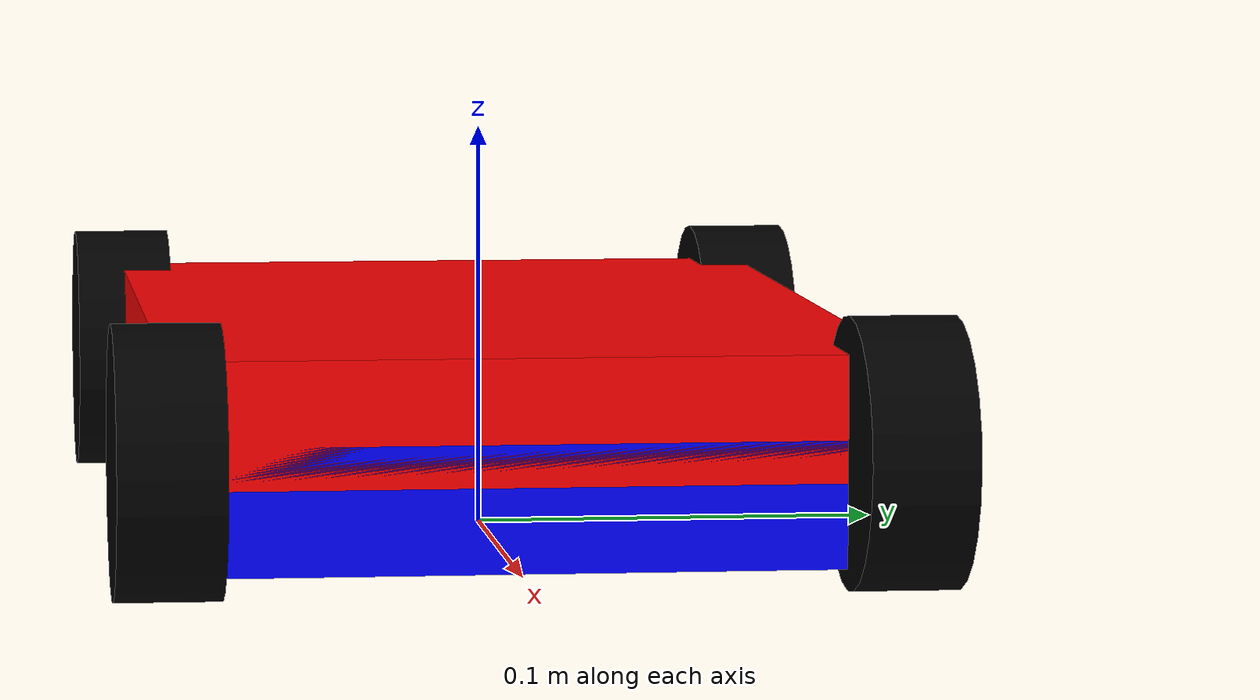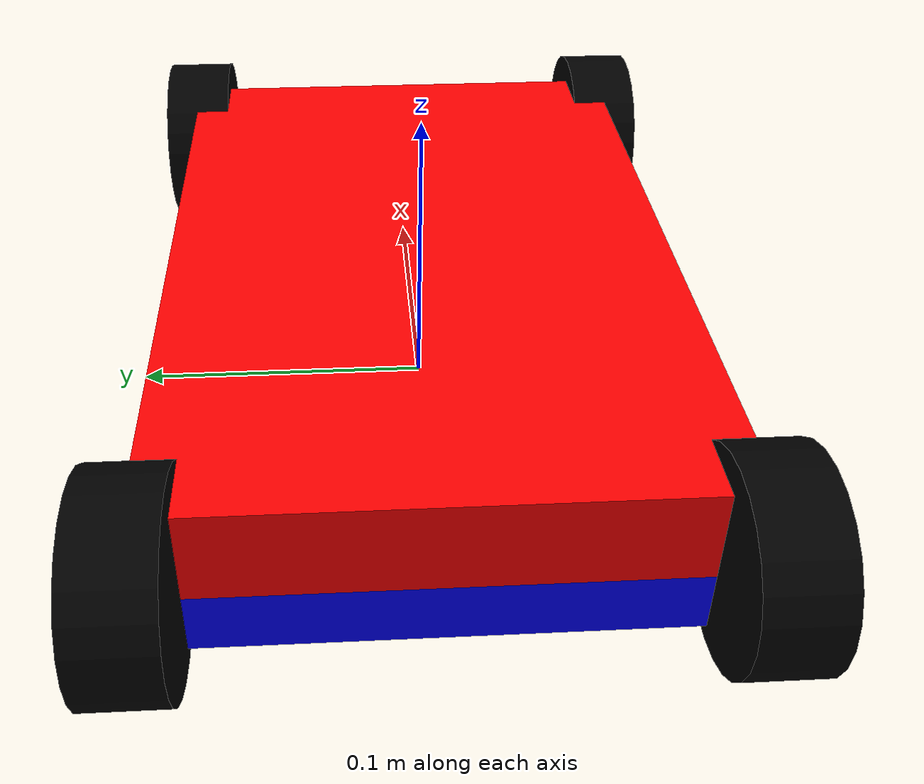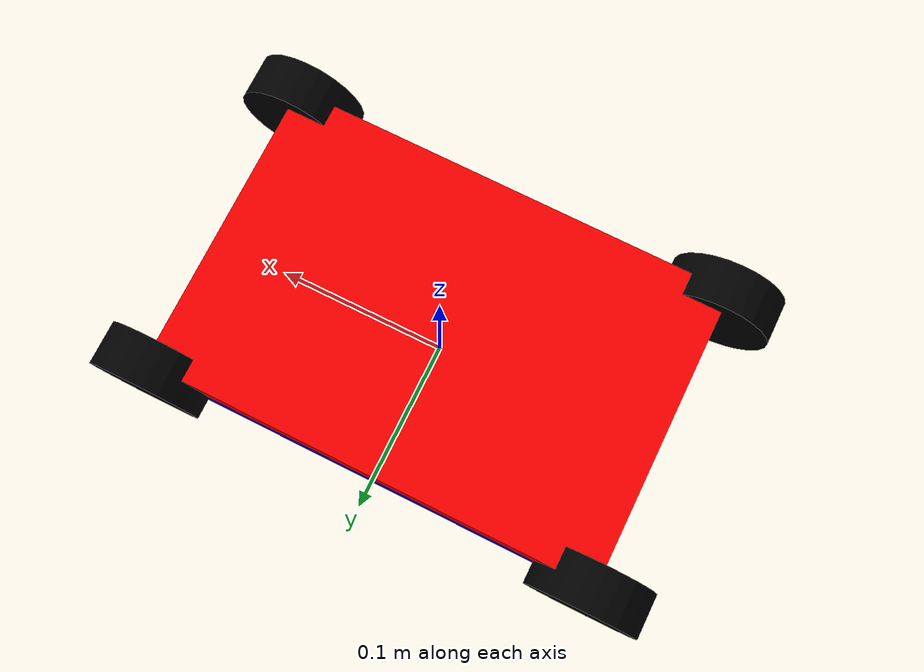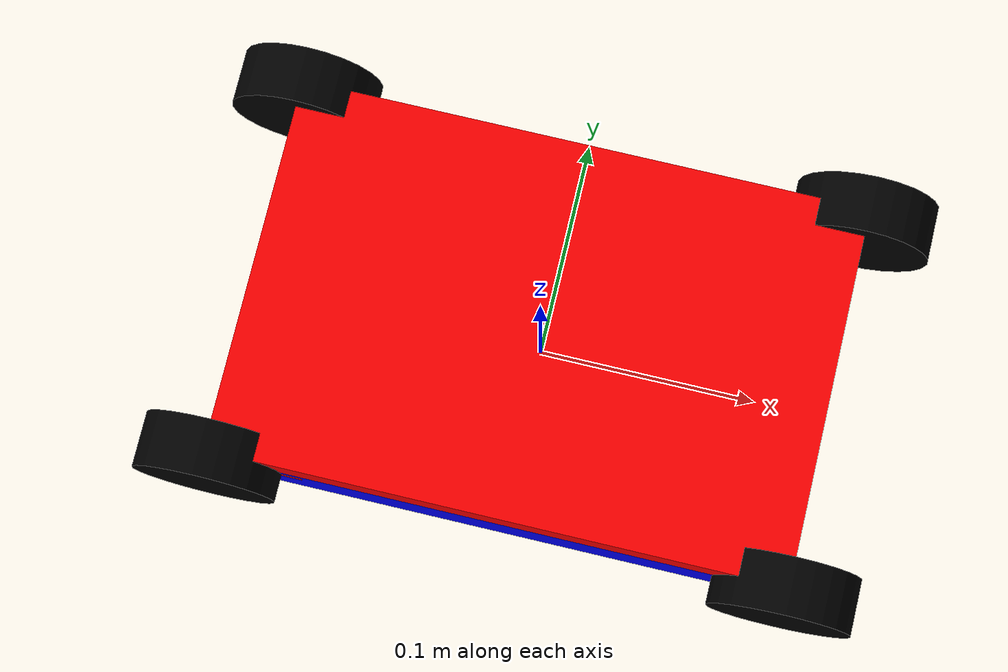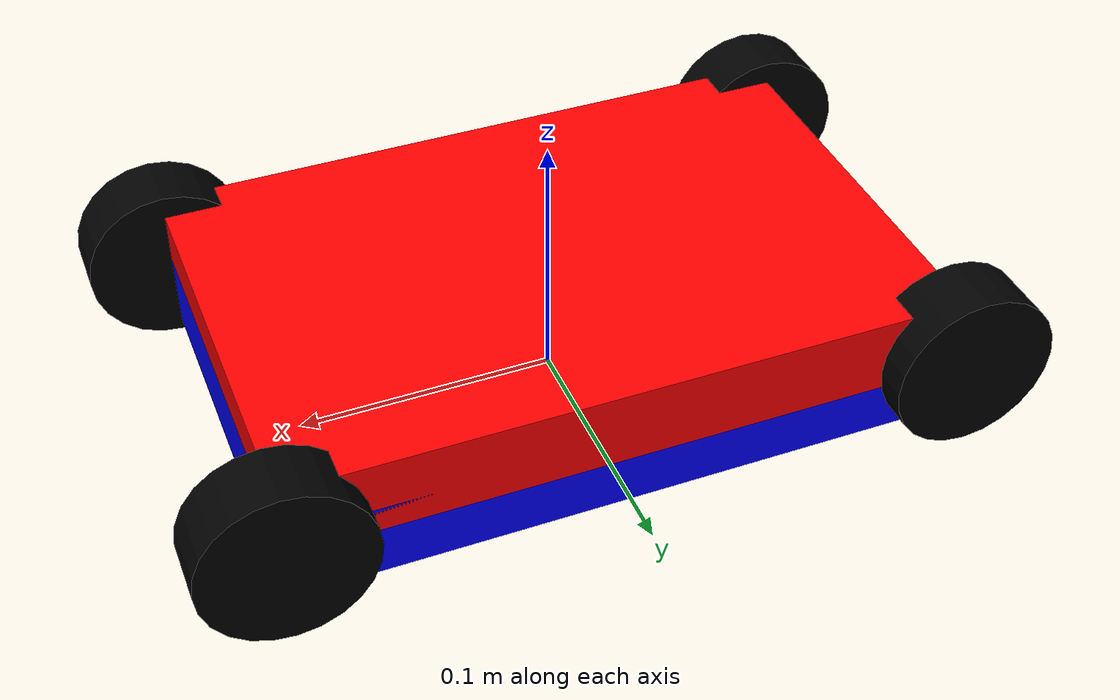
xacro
<?xml version="1.0"?>
<robot name="smartcar" xmlns:xacro="http://ros.org/wiki/xacro">

  <!-- Properties for the robot -->
  <xacro:property name="wheel_diameter" value="0.064"/>
  <xacro:property name="wheel_width" value="0.025"/>
  <xacro:property name="wheelbase_length" value="0.257"/>
  <xacro:property name="wheelbase_width" value="0.17"/>

  <material name="blue">
    <color rgba="0 0 1 1"/>
  </material>

  <material name="red">
    <color rgba="1 0 0 1"/>
  </material>

  <material name="green">
    <color rgba="0 1 0 1"/>
  </material>

  <material name="black">
    <color rgba="0 0 0 1"/>
  </material>

<!-- Robot base -->
<link name="base_link">
    <visual>
        <origin xyz="0 0 0.02"/>  <!-- Adjust height to lower base link -->
        <geometry>
            <box size="${wheelbase_length} ${wheelbase_width} 0.03" />
        </geometry>
        <material name="blue" />
    </visual>
    <collision>
        <origin xyz="0 0 0.01"/>  <!-- Match visual height -->
        <geometry>
            <box size="${wheelbase_length} ${wheelbase_width} 0.03" />
        </geometry>
    </collision>
    <inertial>
        <mass value="5.0"/>
        <origin xyz="0 0 0.01"/>  <!-- Match height -->
        <inertia ixx="0.1" ixy="0.0" ixz="0.0" iyy="0.1" iyz="0.0" izz="0.03"/>
    </inertial>
</link>

<!-- Chassis -->
<link name="chassis_link">
    <visual>
        <origin xyz="0 0 0.01"/>  <!-- Position higher than the base link -->
        <geometry>
            <box size="${wheelbase_length} ${wheelbase_width} 0.03" />
        </geometry>
        <material name="red"/>
    </visual>
    <collision>
        <origin xyz="0 0 0.01"/>  <!-- Match visual height -->
        <geometry>
            <box size="${wheelbase_length} ${wheelbase_width} 0.03" />
        </geometry>
    </collision>
    <inertial>
        <mass value="2.0"/>
        <origin xyz="0 0 0.01"/>  <!-- Match height -->
        <inertia ixx="0.01" ixy="0.0" ixz="0.0" iyy="0.01" iyz="0.0" izz="0.03"/>
    </inertial>
</link>

<!-- Fixed joint between base_link and chassis_link -->
<joint name="chassis_joint" type="fixed">
    <parent link="base_link"/>
    <child link="chassis_link"/>
    <origin xyz="0 0 0.03"/>  <!-- Ensure the chassis sits on top of the base link -->
</joint>

  <!-- Wheels -->
  <xacro:macro name="wheel" params="name joint_parent joint_name xyz_offset">
    <link name="${name}">
      <visual>
        <geometry>
          <cylinder radius="${wheel_diameter / 2}" length="${wheel_width}" />
        </geometry>
        <material name="black" />
      </visual>
      <collision>
        <geometry>
          <cylinder radius="${wheel_diameter / 2}" length="${wheel_width}" />
        </geometry>
      </collision>
      <inertial>
        <mass value="0.1"/>
        <origin xyz="0 0 0"/>
        <inertia ixx="0.001" ixy="0.0" ixz="0.0" iyy="0.001" iyz="0.0" izz="0.001"/>
      </inertial>
    </link>

    <joint name="${joint_name}" type="continuous">
      <parent link="${joint_parent}"/>
      <child link="${name}"/>
      <origin xyz="${xyz_offset} ${wheel_diameter / 2}" rpy="1.57 0 0"/>
      <axis xyz="0 0 1"/>
    </joint>
  </xacro:macro>

  <!-- Rear wheels (fixed position) -->
  <xacro:wheel name="back_left_wheel" joint_parent="base_link" joint_name="back_left_wheel_joint" xyz_offset="-${wheelbase_length / 2} -${wheelbase_width / 2}"/>
  <xacro:wheel name="back_right_wheel" joint_parent="base_link" joint_name="back_right_wheel_joint" xyz_offset="-${wheelbase_length / 2} ${wheelbase_width / 2}"/>

  <!-- Front wheels with steering links -->
  <link name="front_left_steering_link">
    <inertial>
        <mass value="0.1"/>
        <origin xyz="0 0 0"/>
        <inertia ixx="0.001" ixy="0.0" ixz="0.0" iyy="0.001" iyz="0.0" izz="0.001"/>
    </inertial>
  </link>
  <link name="front_right_steering_link">
    <inertial>
        <mass value="0.1"/>
        <origin xyz="0 0 0"/>
        <inertia ixx="0.001" ixy="0.0" ixz="0.0" iyy="0.001" iyz="0.0" izz="0.001"/>
    </inertial>
  </link>

  <!-- Front wheels with steering enabled -->
  <joint name="front_left_steer_joint" type="revolute">
    <parent link="base_link"/>
    <child link="front_left_steering_link"/>
    <origin xyz="${wheelbase_length / 2} -${wheelbase_width / 2} 0"/>
    <axis xyz="0 0 1"/>
    <limit lower="-${45*(3.1415 /180)}" upper="${45*(3.1415 /180)}" effort="10" velocity="1"/>
  </joint>
  <joint name="front_right_steer_joint" type="revolute">
    <parent link="base_link"/>
    <child link="front_right_steering_link"/>
    <origin xyz="${wheelbase_length / 2} ${wheelbase_width / 2} 0"/>
    <axis xyz="0 0 1"/>
    <limit lower="-${45*(3.1415 /180)}" upper="${45*(3.1415 /180)}" effort="10" velocity="1"/>
  </joint>

  <!-- Front wheels attached to steering links -->
  <xacro:wheel name="front_left_wheel" joint_parent="front_left_steering_link" joint_name="front_left_wheel_joint" xyz_offset="0 0"/>
  <xacro:wheel name="front_right_wheel" joint_parent="front_right_steering_link" joint_name="front_right_wheel_joint" xyz_offset="0 0"/>

  <!-- Define parent_link as a property -->
<xacro:property name="parent_link" value="chassis_link"/>

<!--imu_sensor-->
  <link name="imu_link">
    <inertial>
      <origin xyz="0 0 0" />
      <mass value="0.1" />
      <inertia ixx="0.001" ixy="0.0" ixz="0.0" iyy="0.001" iyz="0.0" izz="0.001" />
    </inertial>
  </link>

  <joint name="imu_joint" type="fixed">
    <parent link="${parent_link}" />
    <child link="imu_link" />
    <origin xyz="0.15 0 0.02" rpy="0 0 0" />
  </joint>

  <gazebo>
    <plugin name="imu_plugin" filename="gazebo_ros_imu_sensor">
      <ros>
        <namespace>/</namespace>
        <remapping>imu_data:=/imu_data</remapping>
      </ros>
      <link_name>imu_link</link_name>
    </plugin>
  </gazebo>

<!--lidar_sensor-->
  <link name="sllidar_base_link">
    <inertial>
      <origin xyz="0 0 0.3" />
      <mass value="0.2" />
      <inertia ixx="0.002" ixy="0.0" ixz="0.0" iyy="0.002" iyz="0.0" izz="0.002" />
    </inertial>
  </link>

  <joint name="lidar_joint" type="fixed">
    <parent link="${parent_link}" />
    <child link="sllidar_base_link" />
    <origin xyz="1.0 0 0.3" rpy="0 0 0" />
  </joint>

  <gazebo>
    <plugin name="lidar_plugin" filename="gazebo_ros_ray_sensor">
      <ros>
        <namespace>/</namespace>
        <remapping>scan:=/scan</remapping>
      </ros>
      <topicName>/scan</topicName>
      <linkName>sllidar_base_link</linkName>
      <minAngle>-1.5708</minAngle>
      <maxAngle>1.5708</maxAngle>
      <updateRate>10.0</updateRate>
    </plugin>
  </gazebo>

</robot>
